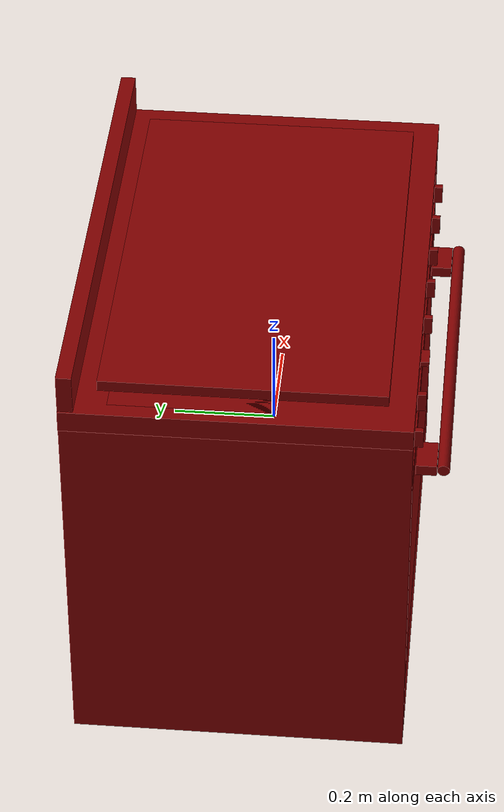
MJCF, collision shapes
<?xml version='1.0' encoding='UTF-8'?>
<mujoco model="model">
  <option timestep="0.002" gravity="0.0 0.0 -9.81"/>
  <compiler angle="radian"/>
  <asset>
    <mesh file="visuals/door.obj" name="door_vis"/>
    <mesh file="visuals/door_Clear.obj" name="door_Clear_vis"/>
    <mesh file="visuals/knob_front_center.obj" name="knob_front_center_vis"/>
    <mesh file="visuals/knob_front_left.obj" name="knob_front_left_vis"/>
    <mesh file="visuals/knob_front_right.obj" name="knob_front_right_vis"/>
    <mesh file="visuals/knob_rear_center.obj" name="knob_rear_center_vis"/>
    <mesh file="visuals/knob_rear_left.obj" name="knob_rear_left_vis"/>
    <mesh file="visuals/knob_rear_right.obj" name="knob_rear_right_vis"/>
    <mesh file="visuals/knob_temp.obj" name="knob_temp_vis"/>
    <mesh file="visuals/knob_time.obj" name="knob_time_vis"/>
    <mesh file="visuals/rack0.obj" name="rack0_vis"/>
    <mesh file="visuals/Body001.obj" name="Body001_vis"/>
    <texture file="visuals/T_BC001.png" name="Body001_material" type="2d"/>
    <material name="Body001_material" rgba="1 1 1 1.0" texture="Body001_material" shininess="0.5" specular="1.5"/>
    <texture file="visuals/T_BC001.png" name="door_material" type="2d"/>
    <material name="door_material" rgba="1 1 1 1.0" texture="door_material" shininess="0.5" specular="1"/>
    <material name="door_Clear_material" rgba="0.3485074043273926 0.3485074043273926 0.3485074043273926 0.8" shininess="0.5" specular="0.3"/>
    <texture file="visuals/T_BC001.png" name="knob_front_center_material" type="2d"/>
    <material name="knob_front_center_material" rgba="1 1 1 1.0" texture="knob_front_center_material" shininess="0.5" specular="2"/>
    <texture file="visuals/T_BC001.png" name="knob_front_left_material" type="2d"/>
    <material name="knob_front_left_material" rgba="1 1 1 1.0" texture="knob_front_left_material" shininess="0.5" specular="2"/>
    <texture file="visuals/T_BC001.png" name="knob_front_right_material" type="2d"/>
    <material name="knob_front_right_material" rgba="1 1 1 1.0" texture="knob_front_right_material" shininess="0.5" specular="2"/>
    <texture file="visuals/T_BC001.png" name="knob_rear_center_material" type="2d"/>
    <material name="knob_rear_center_material" rgba="1 1 1 1.0" texture="knob_rear_center_material" shininess="0.5" specular="2"/>
    <texture file="visuals/T_BC001.png" name="knob_rear_left_material" type="2d"/>
    <material name="knob_rear_left_material" rgba="1 1 1 1.0" texture="knob_rear_left_material" shininess="0.5" specular="2"/>
    <texture file="visuals/T_BC001.png" name="knob_rear_right_material" type="2d"/>
    <material name="knob_rear_right_material" rgba="1 1 1 1.0" texture="knob_rear_right_material" shininess="0.5" specular="2"/>
    <texture file="visuals/T_BC001.png" name="knob_temp_material" type="2d"/>
    <material name="knob_temp_material" rgba="1 1 1 1.0" texture="knob_temp_material" shininess="0.5" specular="2"/>
    <texture file="visuals/T_BC001.png" name="knob_time_material" type="2d"/>
    <material name="knob_time_material" rgba="1 1 1 1.0" texture="knob_time_material" shininess="0.5" specular="2"/>
    <texture file="visuals/T_BC001.png" name="rack0_material" type="2d"/>
    <material name="rack0_material" rgba="1 1 1 1.0" texture="rack0_material" shininess="0.5" specular="2"/>
  </asset>
  <default>
    <default class="visual">
      <geom conaffinity="0" contype="0" group="1" type="mesh"/>
    </default>
    <default class="collision">
      <geom group="0" rgba="0.5 0 0 0.5"/>
    </default>
    <default class="spawn">
      <geom group="0" rgba="1 1 1 0.5" contype="0" conaffinity="0"/>
      <site group="0" rgba="1 1 1 0.5"/>
    </default>
    <default class="region">
      <geom group="1" conaffinity="0" contype="0" rgba="0 1 0 0"/>
    </default>
  </default>
  <worldbody>
    <body>
      <body name="object">
        <geom mesh="Body001_vis" type="mesh" solimp="0.998 0.998 0.001" solref="0.001 1" friction="0.95 0.3 0.1" class="visual" material="Body001_material"/>
        <geom class="collision" type="box" pos="-0.46557632 0.03037344 -0.02053916" size="0.02281191758811474 0.32583460211753845 0.39364221692085266" quat="1.0 0.0 0.0 0.0"/>
        <geom class="collision" type="box" pos="0.46285307 0.03037491 -0.03739854" size="0.027301110327243805 0.32582569122314453 0.37675741314888" quat="1.0 0.0 0.0 0.0"/>
        <geom class="collision" type="box" pos="-0.00782833 0.03028879 -0.34304366" size="0.4429377317428589 0.3259119391441345 0.07090509682893753" quat="1.0 0.0 0.0 0.0"/>
        <geom class="collision" type="box" pos="0.00088328 0.34156246 0.09581313" size="0.4892715811729431 0.014645854011178017 0.3746751844882965" quat="1.0 0.0 0.0 0.0"/>
        <geom class="collision" type="box" pos="-0.00782833 0.03093835 0.30107823" size="0.44297242164611816 0.3018205463886261 0.06149277463555336" quat="1.0 0.0 0.0 0.0"/>
        <geom class="collision" type="box" pos="-0.00782833 -0.26168780 0.23148760" size="0.4429910182952881 0.0340987853705883 0.010478602722287178" quat="1.0 0.0 0.0 0.0"/>
        <geom class="collision" type="box" pos="-0.43528351 0.01754342 0.36980954" size="0.026038331910967827 0.2506486177444458 0.022860614582896233" quat="1.0 0.0 0.0 0.0"/>
        <geom class="collision" type="box" pos="-0.00782833 0.02411066 0.21539354" size="0.4429723918437958 0.28328001499176025 0.010477830655872822" quat="1.0 0.0 0.0 0.0"/>
        <geom class="collision" type="box" pos="-0.00782833 0.02411066 -0.25896937" size="0.4429723918437958 0.28328001499176025 0.010477830655872822" quat="1.0 0.0 0.0 0.0"/>
        <geom class="collision" type="box" pos="-0.42434916 0.02411063 -0.02233807" size="0.010477871634066105 0.28328001499176025 0.23162606358528137" quat="1.0 0.0 0.0 0.0"/>
        <geom class="collision" type="box" pos="0.42353889 0.02411063 -0.02233807" size="0.011447499506175518 0.28328001499176025 0.23162606358528137" quat="1.0 0.0 0.0 0.0"/>
        <geom class="collision" type="box" pos="-0.00276939 0.29940675 -0.02496565" size="0.41782018542289734 0.010477843694388866 0.23594823479652405" quat="1.0 0.0 0.0 0.0"/>
        <geom class="collision" type="box" pos="-0.40847227 0.00387519 0.00259039" size="0.01244853064417839 0.20002445578575134 0.004354590084403753" quat="1.0 0.0 0.0 0.0"/>
        <geom class="collision" type="box" pos="0.40884671 0.00387519 0.00259039" size="0.01244853064417839 0.20002445578575134 0.004354590084403753" quat="1.0 0.0 0.0 0.0"/>
        <geom class="collision" type="cylinder" pos="-0.40363693 -0.24192940 -0.43896979" size="0.02651587501168251 0.02479064092040062" quat="1.0 0.0 0.0 0.0"/>
        <geom class="collision" type="cylinder" pos="0.40865371 -0.24343015 -0.43896979" size="0.02651587501168251 0.02479064092040062" quat="1.0 0.0 0.0 0.0"/>
        <geom class="collision" type="cylinder" pos="0.40865371 0.30158268 -0.43896979" size="0.02651587501168251 0.02479064092040062" quat="1.0 0.0 0.0 0.0"/>
        <geom class="collision" type="cylinder" pos="-0.40363693 0.30308343 -0.43896979" size="0.02651587501168251 0.02479064092040062" quat="1.0 0.0 0.0 0.0"/>
        <geom class="collision" type="box" pos="-0.00087470 0.03000620 0.37108278" size="0.491028755903244 0.32619592547416687 0.02158748358488083" quat="1.0 0.0 0.0 0.0"/>
        <geom class="collision" type="box" pos="0.00249667 0.02214989 0.38566324" size="0.4245339035987854 0.2689007818698883 0.028950542211532593" quat="1.0 0.0 0.0 0.0"/>
        <body name="door">
          <joint axis="1.0 0.0 0.0" pos="-0.00052806 -0.29638438 -0.27039319" limited="true" name="door_joint" range="0.0 1.5707963267948966" type="hinge" damping="1" frictionloss="1" armature=".01" stiffness="0.05"/>
          <geom mesh="door_vis" type="mesh" solimp="0.998 0.998 0.001" solref="0.001 1" friction="0.95 0.3 0.1" class="visual" material="door_material"/>
          <geom class="collision" type="box" pos="0.00000000 -0.27965726 -0.01189002" size="0.35245248675346375 0.011737420223653316 0.18250900506973267" quat="1.0 0.0 0.0 0.0"/>
          <geom class="collision" type="box" pos="0.00000000 -0.28151061 -0.02251863" size="0.4303256869316101 0.014502862468361855 0.2206864207983017" quat="1.0 0.0 0.0 0.0" name="door_main"/>
          <geom class="collision" type="box" pos="-0.31346905 -0.31780501 0.17928532" size="0.03494253382086754 0.020074209198355675 0.011061466298997402" quat="1.0 0.0 0.0 0.0"/>
          <geom class="collision" type="box" pos="0.30681890 -0.31780501 0.17928532" size="0.03494255989789963 0.020074225962162018 0.011061473749577999" quat="1.0 0.0 0.0 0.0"/>
          <geom class="collision" type="cylinder" pos="-0.00000000 -0.35074781 0.17993012" size="0.011870450340211391 0.3469732999801636" quat="0.7071068286895752 -4.7503018407724085e-08 -0.7071067094802856 -4.750301130229673e-08" name="door_handle_main"/>
          <body name="door_Clear">
            <geom mesh="door_Clear_vis" type="mesh" solimp="0.998 0.998 0.001" solref="0.001 1" friction="0.95 0.3 0.1" class="visual" material="door_Clear_material"/>
            <geom class="collision" type="box" pos="0.00000000 -0.27965726 -0.01189002" size="0.35245248675346375 0.011737420223653316 0.18250900506973267" quat="1.0 0.0 0.0 0.0"/>
          </body>
        </body>
        <body name="knob_front_center">
          <joint axis="0.0 -1.0 0.0" pos="0.07875201 -0.29099901 0.28478876" limited="true" name="knob_front_center_joint" range="0.0 3.141592653589793" type="hinge" damping="0.05" armature="1" frictionloss="0.75"/>
          <geom mesh="knob_front_center_vis" type="mesh" solimp="0.998 0.998 0.001" solref="0.001 1" friction="0.95 0.3 0.1" class="visual" material="knob_front_center_material"/>
          <geom class="collision" type="cylinder" pos="0.07924981 -0.28817983 0.28478876" size="0.02351096272468567 0.006129719782620668" quat="0.7071068286895752 0.7071067690849304 -1.5700924318127872e-16 -5.9269340452702814e-24" friction="100 0.5 0.01"/>
          <geom class="collision" type="box" pos="0.07924976 -0.30182295 0.28478879" size="0.005404462572187185 0.009122075513005257 0.019020212814211845" quat="1.0 0.0 0.0 0.0" name="knob_front_center_main" friction="100 0.5 0.01"/>
        </body>
        <body name="knob_front_left">
          <joint axis="0.0 -1.0 0.0" pos="-0.37760913 -0.29099901 0.28478876" limited="true" name="knob_front_left_joint" range="0.0 3.141592653589793" type="hinge" damping="0.05" armature="1" frictionloss="0.75"/>
          <geom mesh="knob_front_left_vis" type="mesh" solimp="0.998 0.998 0.001" solref="0.001 1" friction="0.95 0.3 0.1" class="visual" material="knob_front_left_material"/>
          <geom class="collision" type="cylinder" pos="-0.37760913 -0.28817983 0.28478876" size="0.02351096272468567 0.006129719782620668" quat="0.7071068286895752 0.7071067690849304 -1.5700924318127872e-16 -5.9269340452702814e-24" friction="100 0.5 0.01"/>
          <geom class="collision" type="box" pos="-0.37760916 -0.30182295 0.28478879" size="0.005404462572187185 0.009122075513005257 0.01902022771537304" quat="1.0 0.0 0.0 0.0" name="knob_front_left_main" friction="100 0.5 0.01"/>
        </body>
        <body name="knob_front_right">
          <joint axis="0.0 -1.0 0.0" pos="0.39764524 -0.29099901 0.28478876" limited="true" name="knob_front_right_joint" range="0.0 3.141592653589793" type="hinge" damping="0.05" armature="1" frictionloss="0.75"/>
          <geom mesh="knob_front_right_vis" type="mesh" solimp="0.998 0.998 0.001" solref="0.001 1" friction="0.95 0.3 0.1" class="visual" material="knob_front_right_material"/>
          <geom class="collision" type="cylinder" pos="0.39790887 -0.28817983 0.28478876" size="0.02351096272468567 0.006129719782620668" quat="0.7071068286895752 0.7071067690849304 -1.5700924318127872e-16 -5.9269340452702814e-24" friction="100 0.5 0.01"/>
          <geom class="collision" type="box" pos="0.39790884 -0.30182295 0.28478879" size="0.005404462572187185 0.009122075513005257 0.019020240753889084" quat="1.0 0.0 0.0 0.0" name="knob_front_right_main" friction="100 0.5 0.01"/>
        </body>
        <body name="knob_rear_center">
          <joint axis="0.0 -1.0 0.0" pos="0.18508483 -0.29099901 0.28478876" limited="true" name="knob_rear_center_joint" range="0.0 3.141592653589793" type="hinge" damping="0.05" armature="1" frictionloss="0.75"/>
          <geom mesh="knob_rear_center_vis" type="mesh" solimp="0.998 0.998 0.001" solref="0.001 1" friction="0.95 0.3 0.1" class="visual" material="knob_rear_center_material"/>
          <geom class="collision" type="cylinder" pos="0.18477298 -0.28817983 0.28478876" size="0.02351096272468567 0.006129719782620668" quat="0.7071068286895752 0.7071067690849304 -1.5700924318127872e-16 -5.9269340452702814e-24" friction="100 0.5 0.01"/>
          <geom class="collision" type="box" pos="0.18477294 -0.30182295 0.28478879" size="0.005404462572187185 0.009122075513005257 0.01902025379240513" quat="1.0 0.0 0.0 0.0" name="knob_rear_center_main" friction="100 0.5 0.01"/>
        </body>
        <body name="knob_rear_left">
          <joint axis="0.0 -1.0 0.0" pos="-0.27108979 -0.29099901 0.28478876" limited="true" name="knob_rear_left_joint" range="0.0 3.141592653589793" type="hinge" damping="0.05" armature="1" frictionloss="0.75"/>
          <geom mesh="knob_rear_left_vis" type="mesh" solimp="0.998 0.998 0.001" solref="0.001 1" friction="0.95 0.3 0.1" class="visual" material="knob_rear_left_material"/>
          <geom class="collision" type="cylinder" pos="-0.27098790 -0.28817983 0.28478876" size="0.02351096272468567 0.006129719782620668" quat="0.7071068286895752 0.7071067690849304 -1.5700924318127872e-16 -5.9269340452702814e-24" friction="100 0.5 0.01"/>
          <geom class="collision" type="box" pos="-0.27098793 -0.30182295 0.28478879" size="0.005404462572187185 0.009122075513005257 0.019020268693566322" quat="1.0 0.0 0.0 0.0" name="knob_rear_left_main" friction="100 0.5 0.01"/>
        </body>
        <body name="knob_rear_right">
          <joint axis="0.0 -1.0 0.0" pos="0.29134342 -0.29099901 0.28478876" limited="true" name="knob_rear_right_joint" range="0.0 3.141592653589793" type="hinge" damping="0.05" armature="1" frictionloss="0.75"/>
          <geom mesh="knob_rear_right_vis" type="mesh" solimp="0.998 0.998 0.001" solref="0.001 1" friction="0.95 0.3 0.1" class="visual" material="knob_rear_right_material"/>
          <geom class="collision" type="cylinder" pos="0.29149604 -0.28817983 0.28478876" size="0.02351096272468567 0.006129719782620668" quat="0.7071068286895752 0.7071067690849304 -1.5700924318127872e-16 -5.9269340452702814e-24" friction="100 0.5 0.01"/>
          <geom class="collision" type="box" pos="0.29149601 -0.30182295 0.28478879" size="0.005404462572187185 0.009122075513005257 0.019020281732082367" quat="1.0 0.0 0.0 0.0" name="knob_rear_right_main" friction="100 0.5 0.01"/>
        </body>
        <body name="knob_temp">
          <joint axis="0.0 1.0 0.0" pos="-0.03605950 -0.29099901 0.28478876" limited="true" name="knob_temp_joint" range="0.0 5.585053606381854" type="hinge" damping="0.05" armature="1" frictionloss="0.75"/>
          <geom mesh="knob_temp_vis" type="mesh" solimp="0.998 0.998 0.001" solref="0.001 1" friction="0.95 0.3 0.1" class="visual" material="knob_temp_material"/>
          <geom class="collision" type="cylinder" pos="-0.03594968 -0.28817983 0.28478876" size="0.02351096272468567 0.006129719782620668" quat="0.7071068286895752 0.7071067690849304 -1.5700924318127872e-16 -5.9269340452702814e-24" friction="100 0.5 0.01"/>
          <geom class="collision" type="box" pos="-0.03594972 -0.30182295 0.28478879" size="0.005404462572187185 0.009122075513005257 0.019020309671759605" quat="1.0 0.0 0.0 0.0" name="knob_temp_main" friction="100 0.5 0.01"/>
        </body>
        <body name="knob_time">
          <joint axis="0.0 1.0 0.0" pos="-0.14159927 -0.29099901 0.28478876" limited="true" name="knob_time_joint" range="0.0 5.270894341022875" type="hinge" damping="0.05" armature="1" frictionloss="0.75"/>
          <geom mesh="knob_time_vis" type="mesh" solimp="0.998 0.998 0.001" solref="0.001 1" friction="0.95 0.3 0.1" class="visual" material="knob_time_material"/>
          <geom class="collision" type="cylinder" pos="-0.14113602 -0.28817983 0.28478876" size="0.02351096272468567 0.006129719782620668" quat="0.7071068286895752 0.7071067690849304 -1.5700924318127872e-16 -5.9269340452702814e-24" friction="100 0.5 0.01"/>
          <geom class="collision" type="box" pos="-0.14113601 -0.30182295 0.28478879" size="0.019020427018404007 0.00912207830697298 0.005404402036219835" quat="1.0 0.0 0.0 0.0" name="knob_time_main" friction="100 0.5 0.01"/>
        </body>
        <body name="rack0">
          <geom class="region" name="reg_rack0" type="box" pos="0.00019490499999999522 0.004596955 0.111166365" size="0.395001575 0.24417937499999998 0.091143885"/>
          <joint axis="0.0 -1.0 0.0" pos="0.00138041 0.00555030 0.01520206" limited="true" name="rack0_joint" range="0.0 0.4" type="slide" damping="1" frictionloss="1" armature=".01" stiffness="0.05"/>
          <geom mesh="rack0_vis" type="mesh" solimp="0.998 0.998 0.001" solref="0.001 1" friction="0.95 0.3 0.1" class="visual" material="rack0_material"/>
          <geom class="collision" type="box" pos="0.00039798 0.00387518 0.01403446" size="0.4045194685459137 0.24533186852931976 0.005284389015287161" quat="1.0 0.0 0.0 0.0"/>
        </body>
        <geom class="region" name="reg_int" type="box" pos="0.000618980000000019 0.018655664999999988 -0.02560143999999999" size="0.40745096999999997 0.266249945 0.21653456"/>
        <site type="cylinder" rgba="0.3 0.4 1 0.5" size="0.045871008187532425 0.01818244904279709" pos="-0.28646415 0.14615773 0.38920701" name="burner_on_rear_left"/>
        <site type="cylinder" rgba="0.3 0.4 1 0.5" size="0.06383007019758224 0.01818244904279709" pos="-0.28671888 -0.11018697 0.38920701" name="burner_on_front_left"/>
        <site type="cylinder" rgba="0.3 0.4 1 0.5" size="0.035795263946056366 0.01818244904279709" pos="0.28386751 -0.11033539 0.38920701" name="burner_on_front_right"/>
        <site type="cylinder" rgba="0.3 0.4 1 0.5" size="0.052925318479537964 0.01818244904279709" pos="0.28460315 0.14619322 0.38920701" name="burner_on_rear_right"/>
        <site type="cylinder" rgba="0.3 0.4 1 0.5" size="0.07991979271173477 0.01818244904279709" pos="-0.00036363 -0.11020944 0.38920701" name="burner_on_front_center"/>
        <site type="cylinder" rgba="0.3 0.4 1 0.5" size="0.0651245266199112 0.01818244904279709" pos="-0.00022945 0.14635897 0.38920701" name="burner_on_rear_center"/>
        <site type="cylinder" rgba="0.5 0 0 0" size="0.045871008187532425 4.999999873689376e-05" pos="-0.28646415 0.14615773 0.41475266" name="burner_rear_left_place_site"/>
        <site type="cylinder" rgba="0.5 0 0 0" size="0.06383007019758224 4.999999873689376e-05" pos="-0.28671888 -0.11018697 0.41475266" name="burner_front_left_place_site"/>
        <site type="cylinder" rgba="0.5 0 0 0" size="0.035795263946056366 4.999999873689376e-05" pos="0.28386751 -0.11033539 0.41475266" name="burner_front_right_place_site"/>
        <site type="cylinder" rgba="0.5 0 0 0" size="0.052925318479537964 4.999999873689376e-05" pos="0.28460315 0.14619322 0.41475266" name="burner_rear_right_place_site"/>
        <site type="cylinder" rgba="0.5 0 0 0" size="0.07991979271173477 4.999999873689376e-05" pos="-0.00036363 -0.11020944 0.41475266" name="burner_front_center_place_site"/>
        <site type="cylinder" rgba="0.5 0 0 0" size="0.0651245266199112 4.999999873689376e-05" pos="-0.00022945 0.14635897 0.41475266" name="burner_rear_center_place_site"/>
        <geom class="region" name="reg_main" type="box" pos="-4.999999997368221e-09 0.032352165000000016 -0.03741317999999999" size="0.49383614499999995 0.331000015 0.43108351"/>
      </body>
    </body>
  </worldbody>
  <actuator>
    <motor name="door_joint_actuator" joint="door_joint" gear="50"/>
    <motor name="knob_front_center_joint_actuator" joint="knob_front_center_joint" gear="50"/>
    <motor name="knob_front_left_joint_actuator" joint="knob_front_left_joint" gear="50"/>
    <motor name="knob_front_right_joint_actuator" joint="knob_front_right_joint" gear="50"/>
    <motor name="knob_rear_center_joint_actuator" joint="knob_rear_center_joint" gear="50"/>
    <motor name="knob_rear_left_joint_actuator" joint="knob_rear_left_joint" gear="50"/>
    <motor name="knob_rear_right_joint_actuator" joint="knob_rear_right_joint" gear="50"/>
    <motor name="knob_temp_joint_actuator" joint="knob_temp_joint" gear="50"/>
    <motor name="knob_time_joint_actuator" joint="knob_time_joint" gear="50"/>
    <motor name="rack0_joint_actuator" joint="rack0_joint" gear="50"/>
  </actuator>
</mujoco>
